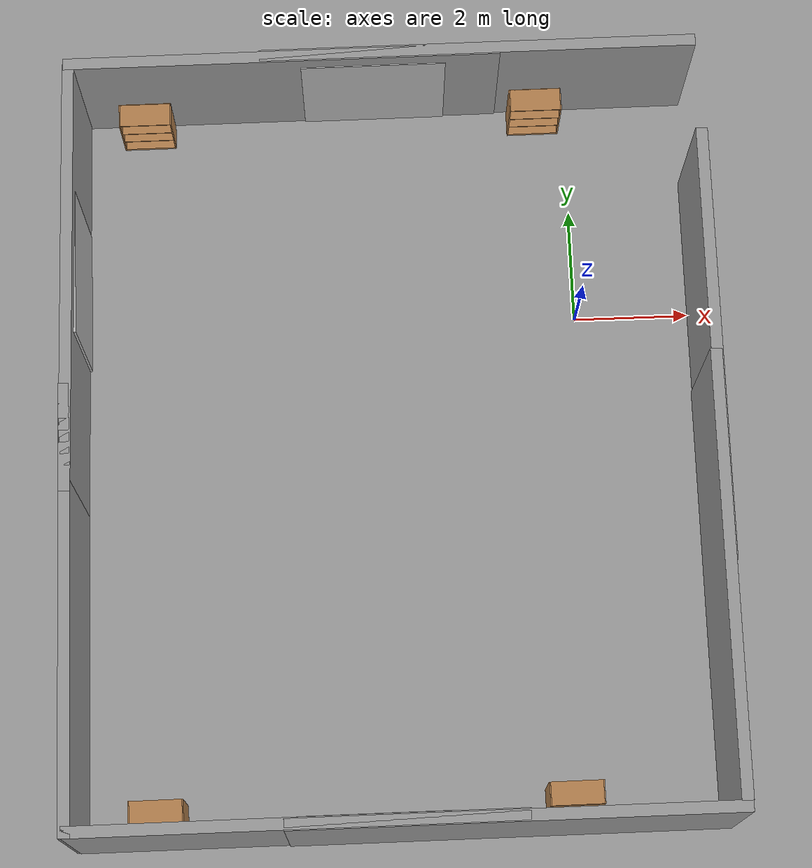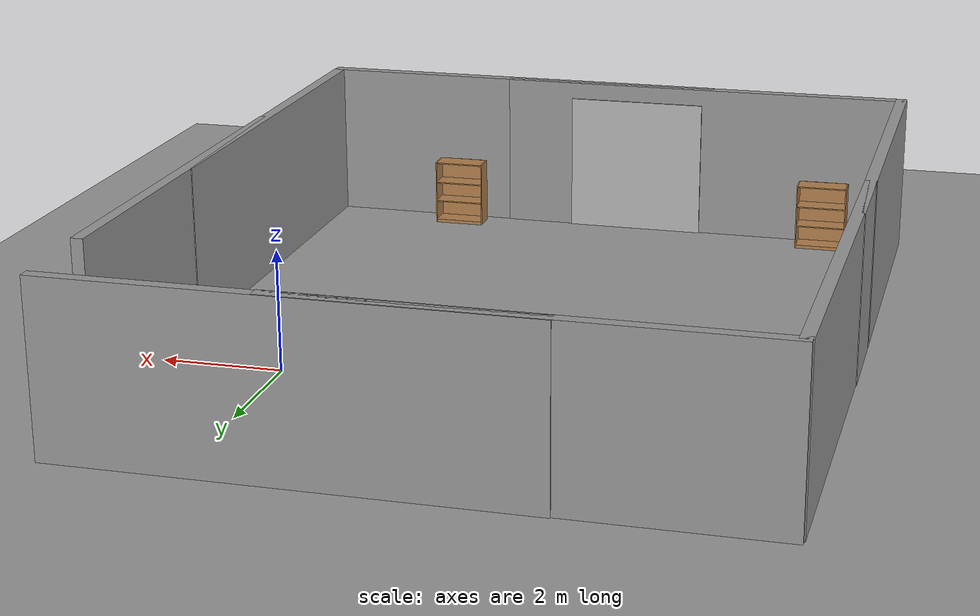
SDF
<sdf version="1.6">
 <world name="default">
  <light name="sun" type="directional">
   <pose>0 0 10 0 -0 0</pose>
   <diffuse>0.8 0.8 0.8 1</diffuse>
   <specular>0.2 0.2 0.2 1</specular>
   <attenuation>
    <range>1000</range>
    <constant>0.9</constant>
    <linear>0.01</linear>
    <quadratic>0.001</quadratic>
   </attenuation>
   <direction>0.5 0.1 -0.9</direction>
  </light>
  <scene><ambient>0.4 0.4 0.4 1</ambient><background>0.7 0.7 0.7 1</background><shadows>1</shadows></scene>
  <physics name="default_physics" default="0" type="ode">
   <max_step_size>0.01</max_step_size>
   <real_time_factor>1</real_time_factor>
   <real_time_update_rate>100</real_time_update_rate>
  </physics>
  <model name="ground_plane_0">
   <static>1</static>
   <link name="link">
    <collision name="collision">
     <geometry><plane><normal>0 0 1</normal><size>100 100</size></plane></geometry>
     <surface><friction><ode><mu>100</mu><mu2>50</mu2></ode></friction></surface>
    </collision>
    <visual name="visual">
     <cast_shadows>0</cast_shadows>
     <geometry><plane><normal>0 0 1</normal><size>100 100</size></plane></geometry>
     <material>
      <script><uri>file://media/materials/scripts/gazebo.material</uri><name>Gazebo/Grey</name></script>
     </material>
    </visual>
    <velocity_decay><linear>0</linear><angular>0</angular></velocity_decay>
   </link>
   <pose>0.497681 0 0 0 -0 0</pose>
  </model>
  <gravity>0 0 -9.8</gravity>
  <magnetic_field>6e-06 2.3e-05 -4.2e-05</magnetic_field>
  <atmosphere type="adiabatic"/>
  <spherical_coordinates>
   <surface_model>EARTH_WGS84</surface_model>
   <latitude_deg>0</latitude_deg>
   <longitude_deg>0</longitude_deg>
   <elevation>0</elevation>
   <heading_deg>0</heading_deg>
  </spherical_coordinates>
  <model name="grey_wall">
   <static>1</static>
   <link name="link">
    <pose>0 0 1.4 0 -0 0</pose>
    <collision name="collision"><geometry><box><size>7.5 0.2 2.8</size></box></geometry></collision>
    <visual name="visual">
     <cast_shadows>0</cast_shadows>
     <geometry><box><size>7.5 0.2 2.8</size></box></geometry>
     <material>
      <script>
       <uri>model://grey_wall/materials/scripts</uri>
       <uri>model://grey_wall/materials/textures</uri>
       <name>vrc/grey_wall</name>
      </script>
     </material>
    </visual>
   </link>
   <pose>-5.15976 -8.98727 0 0 -0 0</pose>
  </model>
  <model name="grey_wall_0">
   <static>1</static>
   <link name="link">
    <pose>0 0 1.4 0 -0 0</pose>
    <collision name="collision"><geometry><box><size>7.5 0.2 2.8</size></box></geometry></collision>
    <visual name="visual">
     <cast_shadows>0</cast_shadows>
     <geometry><box><size>7.5 0.2 2.8</size></box></geometry>
     <material>
      <script>
       <uri>model://grey_wall/materials/scripts</uri>
       <uri>model://grey_wall/materials/textures</uri>
       <name>vrc/grey_wall</name>
      </script>
     </material>
    </visual>
   </link>
   <pose>-8.82013 -5.33225 0 0 -0 1.56058</pose>
  </model>
  <model name="grey_wall_0_clone">
   <static>1</static>
   <link name="link">
    <pose>0 0 1.4 0 -0 0</pose>
    <collision name="collision"><geometry><box><size>7.5 0.2 2.8</size></box></geometry></collision>
    <visual name="visual">
     <cast_shadows>0</cast_shadows>
     <geometry><box><size>7.5 0.2 2.8</size></box></geometry>
     <material>
      <script>
       <uri>model://grey_wall/materials/scripts</uri>
       <uri>model://grey_wall/materials/textures</uri>
       <name>vrc/grey_wall</name>
      </script>
     </material>
    </visual>
   </link>
   <pose>-8.73327 0.336159 0 0 -0 1.55249</pose>
  </model>
  <model name="grey_wall_clone">
   <static>1</static>
   <link name="link">
    <pose>0 0 1.4 0 -0 0</pose>
    <collision name="collision"><geometry><box><size>7.5 0.2 2.8</size></box></geometry></collision>
    <visual name="visual">
     <cast_shadows>0</cast_shadows>
     <geometry><box><size>7.5 0.2 2.8</size></box></geometry>
     <material>
      <script>
       <uri>model://grey_wall/materials/scripts</uri>
       <uri>model://grey_wall/materials/textures</uri>
       <name>vrc/grey_wall</name>
      </script>
     </material>
    </visual>
   </link>
   <pose>-1.60783 -9.00432 0 0 -0 0</pose>
  </model>
  <model name="grey_wall_clone_0">
   <static>1</static>
   <link name="link">
    <pose>0 0 1.4 0 -0 0</pose>
    <collision name="collision"><geometry><box><size>7.5 0.2 2.8</size></box></geometry></collision>
    <visual name="visual">
     <cast_shadows>0</cast_shadows>
     <geometry><box><size>7.5 0.2 2.8</size></box></geometry>
     <material>
      <script>
       <uri>model://grey_wall/materials/scripts</uri>
       <uri>model://grey_wall/materials/textures</uri>
       <name>vrc/grey_wall</name>
      </script>
     </material>
    </visual>
   </link>
   <pose>-4.99758 4.08423 0 0 -0 0</pose>
  </model>
  <model name="grey_wall_clone_1">
   <static>1</static>
   <link name="link">
    <pose>0 0 1.4 0 -0 0</pose>
    <collision name="collision"><geometry><box><size>7.5 0.2 2.8</size></box></geometry></collision>
    <visual name="visual">
     <cast_shadows>0</cast_shadows>
     <geometry><box><size>7.5 0.2 2.8</size></box></geometry>
     <material>
      <script>
       <uri>model://grey_wall/materials/scripts</uri>
       <uri>model://grey_wall/materials/textures</uri>
       <name>vrc/grey_wall</name>
      </script>
     </material>
    </visual>
   </link>
   <pose>-1.63547 4.1071 0 0 -0 0</pose>
  </model>
  <model name="grey_wall_0_clone_0">
   <static>1</static>
   <link name="link">
    <pose>0 0 1.4 0 -0 0</pose>
    <collision name="collision"><geometry><box><size>7.5 0.2 2.8</size></box></geometry></collision>
    <visual name="visual">
     <cast_shadows>0</cast_shadows>
     <geometry><box><size>7.5 0.2 2.8</size></box></geometry>
     <material>
      <script>
       <uri>model://grey_wall/materials/scripts</uri>
       <uri>model://grey_wall/materials/textures</uri>
       <name>vrc/grey_wall</name>
      </script>
     </material>
    </visual>
   </link>
   <pose>2.06648 -5.16601 0 0 -0 1.56712</pose>
  </model>
  <model name="grey_wall_0_clone_0_clone">
   <static>1</static>
   <link name="link">
    <pose>0 0 1.4 0 -0 0</pose>
    <collision name="collision"><geometry><box><size>7.5 0.2 2.8</size></box></geometry></collision>
    <visual name="visual">
     <cast_shadows>0</cast_shadows>
     <geometry><box><size>7.5 0.2 2.8</size></box></geometry>
     <material>
      <script>
       <uri>model://grey_wall/materials/scripts</uri>
       <uri>model://grey_wall/materials/textures</uri>
       <name>vrc/grey_wall</name>
      </script>
     </material>
    </visual>
   </link>
   <pose>2.09639 -1.26026 0 0 -0 1.56712</pose>
  </model>
  <model name="bookshelf_0">
   <static>1</static>
   <link name="link">
    <inertial><mass>1</mass></inertial>
    <collision name="back">
     <pose>0 0.005 0.6 0 -0 0</pose>
     <geometry><box><size>0.9 0.01 1.2</size></box></geometry>
    </collision>
    <visual name="visual1">
     <pose>0 0.005 0.6 0 -0 0</pose>
     <geometry><box><size>0.9 0.01 1.2</size></box></geometry>
     <material>
      <script><uri>file://media/materials/scripts/gazebo.material</uri><name>Gazebo/Wood</name></script>
     </material>
    </visual>
    <collision name="left_side">
     <pose>0.45 -0.195 0.6 0 -0 0</pose>
     <geometry><box><size>0.02 0.4 1.2</size></box></geometry>
    </collision>
    <visual name="visual2">
     <pose>0.45 -0.195 0.6 0 -0 0</pose>
     <geometry><box><size>0.02 0.4 1.2</size></box></geometry>
     <material>
      <script><uri>file://media/materials/scripts/gazebo.material</uri><name>Gazebo/Wood</name></script>
     </material>
    </visual>
    <collision name="right_side">
     <pose>-0.45 -0.195 0.6 0 -0 0</pose>
     <geometry><box><size>0.02 0.4 1.2</size></box></geometry>
    </collision>
    <visual name="visual3">
     <pose>-0.45 -0.195 0.6 0 -0 0</pose>
     <geometry><box><size>0.02 0.4 1.2</size></box></geometry>
     <material>
      <script><uri>file://media/materials/scripts/gazebo.material</uri><name>Gazebo/Wood</name></script>
     </material>
    </visual>
    <collision name="bottom">
     <pose>0 -0.195 0.03 0 -0 0</pose>
     <geometry><box><size>0.88 0.4 0.06</size></box></geometry>
    </collision>
    <visual name="visual4">
     <pose>0 -0.195 0.03 0 -0 0</pose>
     <geometry><box><size>0.88 0.4 0.06</size></box></geometry>
     <material>
      <script><uri>file://media/materials/scripts/gazebo.material</uri><name>Gazebo/Wood</name></script>
     </material>
    </visual>
    <collision name="top">
     <pose>0 -0.195 1.19 0 -0 0</pose>
     <geometry><box><size>0.88 0.4 0.02</size></box></geometry>
    </collision>
    <visual name="visual5">
     <pose>0 -0.195 1.19 0 -0 0</pose>
     <geometry><box><size>0.88 0.4 0.02</size></box></geometry>
     <material>
      <script><uri>file://media/materials/scripts/gazebo.material</uri><name>Gazebo/Wood</name></script>
     </material>
    </visual>
    <collision name="low_shelf">
     <pose>0 -0.195 0.43 0 -0 0</pose>
     <geometry><box><size>0.88 0.4 0.02</size></box></geometry>
    </collision>
    <visual name="visual6">
     <pose>0 -0.195 0.43 0 -0 0</pose>
     <geometry><box><size>0.88 0.4 0.02</size></box></geometry>
     <material>
      <script><uri>file://media/materials/scripts/gazebo.material</uri><name>Gazebo/Wood</name></script>
     </material>
    </visual>
    <collision name="high_shelf">
     <pose>0 -0.195 0.8 0 -0 0</pose>
     <geometry><box><size>0.88 0.4 0.02</size></box></geometry>
    </collision>
    <visual name="visual7">
     <pose>0 -0.195 0.8 0 -0 0</pose>
     <geometry><box><size>0.88 0.4 0.02</size></box></geometry>
     <material>
      <script><uri>file://media/materials/scripts/gazebo.material</uri><name>Gazebo/Wood</name></script>
     </material>
    </visual>
   </link>
   <pose>-7.49863 3.93237 0 0 -0 0</pose>
  </model>
  <model name="bookshelf_1">
   <static>1</static>
   <link name="link">
    <inertial><mass>1</mass></inertial>
    <collision name="back">
     <pose>0 0.005 0.6 0 -0 0</pose>
     <geometry><box><size>0.9 0.01 1.2</size></box></geometry>
    </collision>
    <visual name="visual1">
     <pose>0 0.005 0.6 0 -0 0</pose>
     <geometry><box><size>0.9 0.01 1.2</size></box></geometry>
     <material>
      <script><uri>file://media/materials/scripts/gazebo.material</uri><name>Gazebo/Wood</name></script>
     </material>
    </visual>
    <collision name="left_side">
     <pose>0.45 -0.195 0.6 0 -0 0</pose>
     <geometry><box><size>0.02 0.4 1.2</size></box></geometry>
    </collision>
    <visual name="visual2">
     <pose>0.45 -0.195 0.6 0 -0 0</pose>
     <geometry><box><size>0.02 0.4 1.2</size></box></geometry>
     <material>
      <script><uri>file://media/materials/scripts/gazebo.material</uri><name>Gazebo/Wood</name></script>
     </material>
    </visual>
    <collision name="right_side">
     <pose>-0.45 -0.195 0.6 0 -0 0</pose>
     <geometry><box><size>0.02 0.4 1.2</size></box></geometry>
    </collision>
    <visual name="visual3">
     <pose>-0.45 -0.195 0.6 0 -0 0</pose>
     <geometry><box><size>0.02 0.4 1.2</size></box></geometry>
     <material>
      <script><uri>file://media/materials/scripts/gazebo.material</uri><name>Gazebo/Wood</name></script>
     </material>
    </visual>
    <collision name="bottom">
     <pose>0 -0.195 0.03 0 -0 0</pose>
     <geometry><box><size>0.88 0.4 0.06</size></box></geometry>
    </collision>
    <visual name="visual4">
     <pose>0 -0.195 0.03 0 -0 0</pose>
     <geometry><box><size>0.88 0.4 0.06</size></box></geometry>
     <material>
      <script><uri>file://media/materials/scripts/gazebo.material</uri><name>Gazebo/Wood</name></script>
     </material>
    </visual>
    <collision name="top">
     <pose>0 -0.195 1.19 0 -0 0</pose>
     <geometry><box><size>0.88 0.4 0.02</size></box></geometry>
    </collision>
    <visual name="visual5">
     <pose>0 -0.195 1.19 0 -0 0</pose>
     <geometry><box><size>0.88 0.4 0.02</size></box></geometry>
     <material>
      <script><uri>file://media/materials/scripts/gazebo.material</uri><name>Gazebo/Wood</name></script>
     </material>
    </visual>
    <collision name="low_shelf">
     <pose>0 -0.195 0.43 0 -0 0</pose>
     <geometry><box><size>0.88 0.4 0.02</size></box></geometry>
    </collision>
    <visual name="visual6">
     <pose>0 -0.195 0.43 0 -0 0</pose>
     <geometry><box><size>0.88 0.4 0.02</size></box></geometry>
     <material>
      <script><uri>file://media/materials/scripts/gazebo.material</uri><name>Gazebo/Wood</name></script>
     </material>
    </visual>
    <collision name="high_shelf">
     <pose>0 -0.195 0.8 0 -0 0</pose>
     <geometry><box><size>0.88 0.4 0.02</size></box></geometry>
    </collision>
    <visual name="visual7">
     <pose>0 -0.195 0.8 0 -0 0</pose>
     <geometry><box><size>0.88 0.4 0.02</size></box></geometry>
     <material>
      <script><uri>file://media/materials/scripts/gazebo.material</uri><name>Gazebo/Wood</name></script>
     </material>
    </visual>
   </link>
   <pose>-0.572188 3.93816 0 0 -0 0</pose>
  </model>
  <model name="bookshelf_2">
   <static>1</static>
   <link name="link">
    <inertial><mass>1</mass></inertial>
    <collision name="back">
     <pose>0 0.005 0.6 0 -0 0</pose>
     <geometry><box><size>0.9 0.01 1.2</size></box></geometry>
    </collision>
    <visual name="visual1">
     <pose>0 0.005 0.6 0 -0 0</pose>
     <geometry><box><size>0.9 0.01 1.2</size></box></geometry>
     <material>
      <script><uri>file://media/materials/scripts/gazebo.material</uri><name>Gazebo/Wood</name></script>
     </material>
    </visual>
    <collision name="left_side">
     <pose>0.45 -0.195 0.6 0 -0 0</pose>
     <geometry><box><size>0.02 0.4 1.2</size></box></geometry>
    </collision>
    <visual name="visual2">
     <pose>0.45 -0.195 0.6 0 -0 0</pose>
     <geometry><box><size>0.02 0.4 1.2</size></box></geometry>
     <material>
      <script><uri>file://media/materials/scripts/gazebo.material</uri><name>Gazebo/Wood</name></script>
     </material>
    </visual>
    <collision name="right_side">
     <pose>-0.45 -0.195 0.6 0 -0 0</pose>
     <geometry><box><size>0.02 0.4 1.2</size></box></geometry>
    </collision>
    <visual name="visual3">
     <pose>-0.45 -0.195 0.6 0 -0 0</pose>
     <geometry><box><size>0.02 0.4 1.2</size></box></geometry>
     <material>
      <script><uri>file://media/materials/scripts/gazebo.material</uri><name>Gazebo/Wood</name></script>
     </material>
    </visual>
    <collision name="bottom">
     <pose>0 -0.195 0.03 0 -0 0</pose>
     <geometry><box><size>0.88 0.4 0.06</size></box></geometry>
    </collision>
    <visual name="visual4">
     <pose>0 -0.195 0.03 0 -0 0</pose>
     <geometry><box><size>0.88 0.4 0.06</size></box></geometry>
     <material>
      <script><uri>file://media/materials/scripts/gazebo.material</uri><name>Gazebo/Wood</name></script>
     </material>
    </visual>
    <collision name="top">
     <pose>0 -0.195 1.19 0 -0 0</pose>
     <geometry><box><size>0.88 0.4 0.02</size></box></geometry>
    </collision>
    <visual name="visual5">
     <pose>0 -0.195 1.19 0 -0 0</pose>
     <geometry><box><size>0.88 0.4 0.02</size></box></geometry>
     <material>
      <script><uri>file://media/materials/scripts/gazebo.material</uri><name>Gazebo/Wood</name></script>
     </material>
    </visual>
    <collision name="low_shelf">
     <pose>0 -0.195 0.43 0 -0 0</pose>
     <geometry><box><size>0.88 0.4 0.02</size></box></geometry>
    </collision>
    <visual name="visual6">
     <pose>0 -0.195 0.43 0 -0 0</pose>
     <geometry><box><size>0.88 0.4 0.02</size></box></geometry>
     <material>
      <script><uri>file://media/materials/scripts/gazebo.material</uri><name>Gazebo/Wood</name></script>
     </material>
    </visual>
    <collision name="high_shelf">
     <pose>0 -0.195 0.8 0 -0 0</pose>
     <geometry><box><size>0.88 0.4 0.02</size></box></geometry>
    </collision>
    <visual name="visual7">
     <pose>0 -0.195 0.8 0 -0 0</pose>
     <geometry><box><size>0.88 0.4 0.02</size></box></geometry>
     <material>
      <script><uri>file://media/materials/scripts/gazebo.material</uri><name>Gazebo/Wood</name></script>
     </material>
    </visual>
   </link>
   <pose>-7.53139 -8.75402 0 0 0 -3.13712</pose>
  </model>
  <model name="bookshelf_2_clone">
   <static>1</static>
   <link name="link">
    <inertial><mass>1</mass></inertial>
    <collision name="back">
     <pose>0 0.005 0.6 0 -0 0</pose>
     <geometry><box><size>0.9 0.01 1.2</size></box></geometry>
    </collision>
    <visual name="visual1">
     <pose>0 0.005 0.6 0 -0 0</pose>
     <geometry><box><size>0.9 0.01 1.2</size></box></geometry>
     <material>
      <script><uri>file://media/materials/scripts/gazebo.material</uri><name>Gazebo/Wood</name></script>
     </material>
    </visual>
    <collision name="left_side">
     <pose>0.45 -0.195 0.6 0 -0 0</pose>
     <geometry><box><size>0.02 0.4 1.2</size></box></geometry>
    </collision>
    <visual name="visual2">
     <pose>0.45 -0.195 0.6 0 -0 0</pose>
     <geometry><box><size>0.02 0.4 1.2</size></box></geometry>
     <material>
      <script><uri>file://media/materials/scripts/gazebo.material</uri><name>Gazebo/Wood</name></script>
     </material>
    </visual>
    <collision name="right_side">
     <pose>-0.45 -0.195 0.6 0 -0 0</pose>
     <geometry><box><size>0.02 0.4 1.2</size></box></geometry>
    </collision>
    <visual name="visual3">
     <pose>-0.45 -0.195 0.6 0 -0 0</pose>
     <geometry><box><size>0.02 0.4 1.2</size></box></geometry>
     <material>
      <script><uri>file://media/materials/scripts/gazebo.material</uri><name>Gazebo/Wood</name></script>
     </material>
    </visual>
    <collision name="bottom">
     <pose>0 -0.195 0.03 0 -0 0</pose>
     <geometry><box><size>0.88 0.4 0.06</size></box></geometry>
    </collision>
    <visual name="visual4">
     <pose>0 -0.195 0.03 0 -0 0</pose>
     <geometry><box><size>0.88 0.4 0.06</size></box></geometry>
     <material>
      <script><uri>file://media/materials/scripts/gazebo.material</uri><name>Gazebo/Wood</name></script>
     </material>
    </visual>
    <collision name="top">
     <pose>0 -0.195 1.19 0 -0 0</pose>
     <geometry><box><size>0.88 0.4 0.02</size></box></geometry>
    </collision>
    <visual name="visual5">
     <pose>0 -0.195 1.19 0 -0 0</pose>
     <geometry><box><size>0.88 0.4 0.02</size></box></geometry>
     <material>
      <script><uri>file://media/materials/scripts/gazebo.material</uri><name>Gazebo/Wood</name></script>
     </material>
    </visual>
    <collision name="low_shelf">
     <pose>0 -0.195 0.43 0 -0 0</pose>
     <geometry><box><size>0.88 0.4 0.02</size></box></geometry>
    </collision>
    <visual name="visual6">
     <pose>0 -0.195 0.43 0 -0 0</pose>
     <geometry><box><size>0.88 0.4 0.02</size></box></geometry>
     <material>
      <script><uri>file://media/materials/scripts/gazebo.material</uri><name>Gazebo/Wood</name></script>
     </material>
    </visual>
    <collision name="high_shelf">
     <pose>0 -0.195 0.8 0 -0 0</pose>
     <geometry><box><size>0.88 0.4 0.02</size></box></geometry>
    </collision>
    <visual name="visual7">
     <pose>0 -0.195 0.8 0 -0 0</pose>
     <geometry><box><size>0.88 0.4 0.02</size></box></geometry>
     <material>
      <script><uri>file://media/materials/scripts/gazebo.material</uri><name>Gazebo/Wood</name></script>
     </material>
    </visual>
   </link>
   <pose>-0.530296 -8.71711 0 0 0 -3.13712</pose>
  </model>
  <model name="wall0">
   <pose>-3.91186 -8.9267 0 0 -0 0</pose>
   <link name="Wall_0">
    <collision name="Wall_0_Collision">
     <geometry><box><size>2.5 0.15 2.5</size></box></geometry>
     <pose>0 0 1.25 0 -0 0</pose>
    </collision>
    <visual name="Wall_0_Visual">
     <pose>0 0 1.25 0 -0 0</pose>
     <geometry><box><size>2.5 0.15 2.5</size></box></geometry>
     <material>
      <script>
       <uri>model://wall_triangle_black/materials/scripts/texturet.material</uri>
       <uri>model://wall_triangle_black/materials/texturest</uri>
       <name>wallc-texture</name>
      </script>
     </material>
    </visual>
   </link>
   <static>1</static>
  </model>
  <model name="wall1">
   <pose>-3.43358 4.04015 0 0 -0 0</pose>
   <link name="Wall_1">
    <collision name="Wall_1_Collision">
     <geometry><box><size>2.5 0.15 2.5</size></box></geometry>
     <pose>0 0 1.25 0 -0 0</pose>
    </collision>
    <visual name="Wall_1_Visual">
     <pose>0 0 1.25 0 -0 0</pose>
     <geometry><box><size>2.5 0.15 2.5</size></box></geometry>
     <material>
      <script>
       <uri>model://wall_square_black/materials/scripts/textures.material</uri>
       <name>wallb-texture</name>
      </script>
     </material>
    </visual>
   </link>
   <static>1</static>
  </model>
  <model name="wall2">
   <pose>-8.67854 0.639552 0 0 -0 1.56416</pose>
   <link name="Wall_2">
    <collision name="Wall_2_Collision">
     <geometry><box><size>2.5 0.15 2.5</size></box></geometry>
     <pose>0 0 1.25 0 -0 0</pose>
    </collision>
    <visual name="Wall_2_Visual">
     <pose>0 0 1.25 0 -0 0</pose>
     <geometry><box><size>2.5 0.15 2.5</size></box></geometry>
     <material>
      <script>
       <uri>model://wall_cricle_black/materials/scripts/texturec.material</uri>
       <name>walla-texture</name>
      </script>
     </material>
    </visual>
   </link>
   <static>1</static>
  </model>
 </world>
</sdf>
